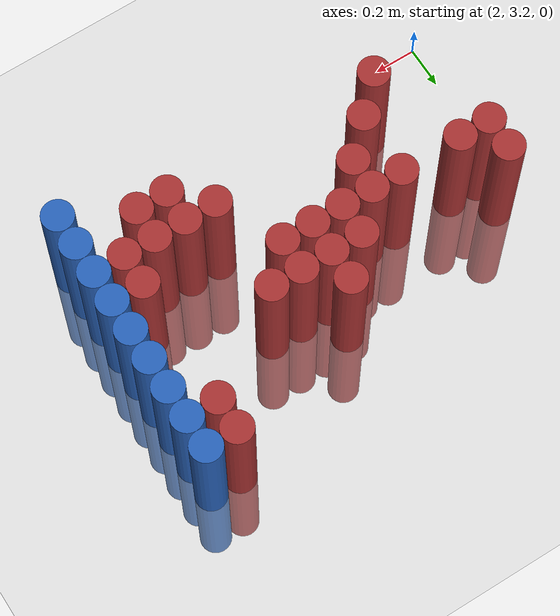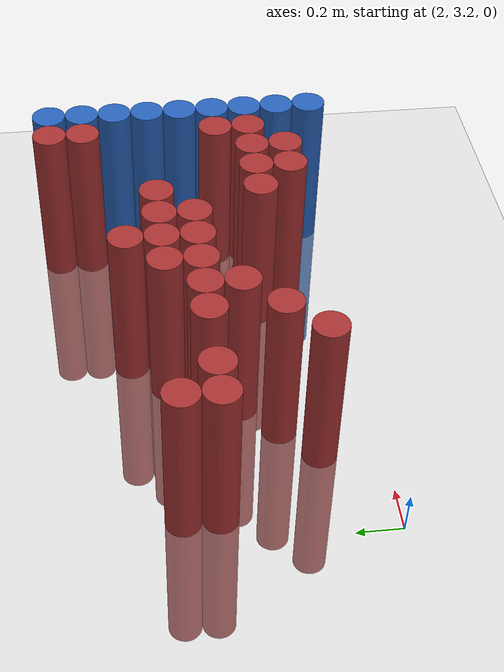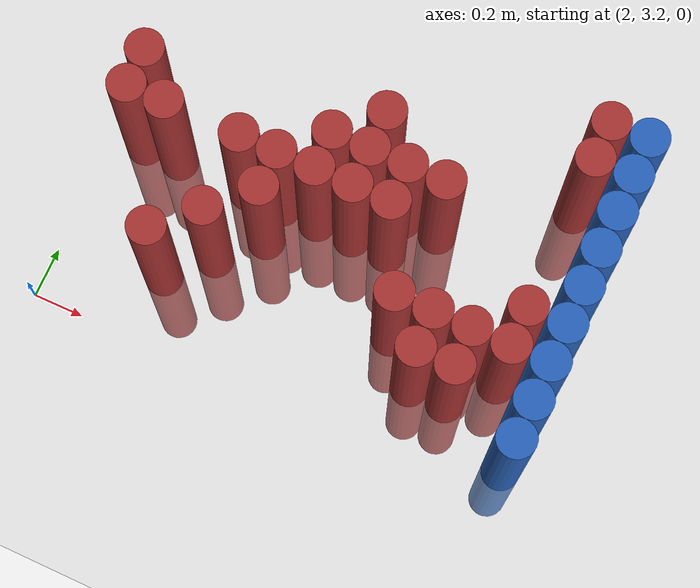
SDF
<sdf version="1.6">
 <world name="default">
  <model name="ground_plane">
   <static>1</static>
   <link name="link">
    <collision name="collision">
     <geometry><plane><normal>0 0 1</normal><size>100 100</size></plane></geometry>
     <surface><friction><ode><mu>100</mu><mu2>50</mu2></ode></friction></surface>
    </collision>
    <visual name="visual">
     <cast_shadows>0</cast_shadows>
     <geometry><plane><normal>0 0 1</normal><size>100 100</size></plane></geometry>
     <material>
      <script><uri>file://media/materials/scripts/gazebo.material</uri><name>Gazebo/Grey</name></script>
     </material>
    </visual>
   </link>
  </model>
  <model name="unit_cylinder_160">
   <static>1</static>
   <pose>3.925000 3.475000 0.000000 0.000000 0.000000 0.000000</pose>
   <link name="link">
    <inertial>
     <mass>1</mass>
     <inertia><ixx>0.145833</ixx><ixy>0</ixy><ixz>0</ixz><iyy>0.145833</iyy><iyz>0</iyz><izz>0.125</izz></inertia>
    </inertial>
    <collision name="collision">
     <geometry><cylinder><radius>0.075000</radius><length>1.5</length></cylinder></geometry>
    </collision>
    <visual name="visual">
     <geometry><cylinder><radius>0.075000</radius><length>1.5</length></cylinder></geometry>
     <material>
      <ambient>0.152000 0.379000 0.720000 1</ambient>
      <diffuse>0.152000 0.379000 0.720000 1</diffuse>
     </material>
     <material>
      <script><name>Gazebo/Grey</name><uri>file://media/materials/scripts/gazebo.material</uri></script>
     </material>
    </visual>
   </link>
  </model>
  <model name="unit_cylinder_162">
   <static>1</static>
   <pose>3.925000 3.625000 0.000000 0.000000 0.000000 0.000000</pose>
   <link name="link">
    <inertial>
     <mass>1</mass>
     <inertia><ixx>0.145833</ixx><ixy>0</ixy><ixz>0</ixz><iyy>0.145833</iyy><iyz>0</iyz><izz>0.125</izz></inertia>
    </inertial>
    <collision name="collision">
     <geometry><cylinder><radius>0.075000</radius><length>1.5</length></cylinder></geometry>
    </collision>
    <visual name="visual">
     <geometry><cylinder><radius>0.075000</radius><length>1.5</length></cylinder></geometry>
     <material>
      <ambient>0.152000 0.379000 0.720000 1</ambient>
      <diffuse>0.152000 0.379000 0.720000 1</diffuse>
     </material>
     <material>
      <script><name>Gazebo/Grey</name><uri>file://media/materials/scripts/gazebo.material</uri></script>
     </material>
    </visual>
   </link>
  </model>
  <model name="unit_cylinder_164">
   <static>1</static>
   <pose>3.925000 3.775000 0.000000 0.000000 0.000000 0.000000</pose>
   <link name="link">
    <inertial>
     <mass>1</mass>
     <inertia><ixx>0.145833</ixx><ixy>0</ixy><ixz>0</ixz><iyy>0.145833</iyy><iyz>0</iyz><izz>0.125</izz></inertia>
    </inertial>
    <collision name="collision">
     <geometry><cylinder><radius>0.075000</radius><length>1.5</length></cylinder></geometry>
    </collision>
    <visual name="visual">
     <geometry><cylinder><radius>0.075000</radius><length>1.5</length></cylinder></geometry>
     <material>
      <ambient>0.152000 0.379000 0.720000 1</ambient>
      <diffuse>0.152000 0.379000 0.720000 1</diffuse>
     </material>
     <material>
      <script><name>Gazebo/Grey</name><uri>file://media/materials/scripts/gazebo.material</uri></script>
     </material>
    </visual>
   </link>
  </model>
  <model name="unit_cylinder_166">
   <static>1</static>
   <pose>3.925000 3.925000 0.000000 0.000000 0.000000 0.000000</pose>
   <link name="link">
    <inertial>
     <mass>1</mass>
     <inertia><ixx>0.145833</ixx><ixy>0</ixy><ixz>0</ixz><iyy>0.145833</iyy><iyz>0</iyz><izz>0.125</izz></inertia>
    </inertial>
    <collision name="collision">
     <geometry><cylinder><radius>0.075000</radius><length>1.5</length></cylinder></geometry>
    </collision>
    <visual name="visual">
     <geometry><cylinder><radius>0.075000</radius><length>1.5</length></cylinder></geometry>
     <material>
      <ambient>0.152000 0.379000 0.720000 1</ambient>
      <diffuse>0.152000 0.379000 0.720000 1</diffuse>
     </material>
     <material>
      <script><name>Gazebo/Grey</name><uri>file://media/materials/scripts/gazebo.material</uri></script>
     </material>
    </visual>
   </link>
  </model>
  <model name="unit_cylinder_168">
   <static>1</static>
   <pose>3.925000 4.075000 0.000000 0.000000 0.000000 0.000000</pose>
   <link name="link">
    <inertial>
     <mass>1</mass>
     <inertia><ixx>0.145833</ixx><ixy>0</ixy><ixz>0</ixz><iyy>0.145833</iyy><iyz>0</iyz><izz>0.125</izz></inertia>
    </inertial>
    <collision name="collision">
     <geometry><cylinder><radius>0.075000</radius><length>1.5</length></cylinder></geometry>
    </collision>
    <visual name="visual">
     <geometry><cylinder><radius>0.075000</radius><length>1.5</length></cylinder></geometry>
     <material>
      <ambient>0.152000 0.379000 0.720000 1</ambient>
      <diffuse>0.152000 0.379000 0.720000 1</diffuse>
     </material>
     <material>
      <script><name>Gazebo/Grey</name><uri>file://media/materials/scripts/gazebo.material</uri></script>
     </material>
    </visual>
   </link>
  </model>
  <model name="unit_cylinder_170">
   <static>1</static>
   <pose>3.925000 4.225000 0.000000 0.000000 0.000000 0.000000</pose>
   <link name="link">
    <inertial>
     <mass>1</mass>
     <inertia><ixx>0.145833</ixx><ixy>0</ixy><ixz>0</ixz><iyy>0.145833</iyy><iyz>0</iyz><izz>0.125</izz></inertia>
    </inertial>
    <collision name="collision">
     <geometry><cylinder><radius>0.075000</radius><length>1.5</length></cylinder></geometry>
    </collision>
    <visual name="visual">
     <geometry><cylinder><radius>0.075000</radius><length>1.5</length></cylinder></geometry>
     <material>
      <ambient>0.152000 0.379000 0.720000 1</ambient>
      <diffuse>0.152000 0.379000 0.720000 1</diffuse>
     </material>
     <material>
      <script><name>Gazebo/Grey</name><uri>file://media/materials/scripts/gazebo.material</uri></script>
     </material>
    </visual>
   </link>
  </model>
  <model name="unit_cylinder_172">
   <static>1</static>
   <pose>3.925000 4.375000 0.000000 0.000000 0.000000 0.000000</pose>
   <link name="link">
    <inertial>
     <mass>1</mass>
     <inertia><ixx>0.145833</ixx><ixy>0</ixy><ixz>0</ixz><iyy>0.145833</iyy><iyz>0</iyz><izz>0.125</izz></inertia>
    </inertial>
    <collision name="collision">
     <geometry><cylinder><radius>0.075000</radius><length>1.5</length></cylinder></geometry>
    </collision>
    <visual name="visual">
     <geometry><cylinder><radius>0.075000</radius><length>1.5</length></cylinder></geometry>
     <material>
      <ambient>0.152000 0.379000 0.720000 1</ambient>
      <diffuse>0.152000 0.379000 0.720000 1</diffuse>
     </material>
     <material>
      <script><name>Gazebo/Grey</name><uri>file://media/materials/scripts/gazebo.material</uri></script>
     </material>
    </visual>
   </link>
  </model>
  <model name="unit_cylinder_174">
   <static>1</static>
   <pose>3.925000 4.525000 0.000000 0.000000 0.000000 0.000000</pose>
   <link name="link">
    <inertial>
     <mass>1</mass>
     <inertia><ixx>0.145833</ixx><ixy>0</ixy><ixz>0</ixz><iyy>0.145833</iyy><iyz>0</iyz><izz>0.125</izz></inertia>
    </inertial>
    <collision name="collision">
     <geometry><cylinder><radius>0.075000</radius><length>1.5</length></cylinder></geometry>
    </collision>
    <visual name="visual">
     <geometry><cylinder><radius>0.075000</radius><length>1.5</length></cylinder></geometry>
     <material>
      <ambient>0.152000 0.379000 0.720000 1</ambient>
      <diffuse>0.152000 0.379000 0.720000 1</diffuse>
     </material>
     <material>
      <script><name>Gazebo/Grey</name><uri>file://media/materials/scripts/gazebo.material</uri></script>
     </material>
    </visual>
   </link>
  </model>
  <model name="unit_cylinder_452">
   <static>1</static>
   <pose>2.125000 3.925000 0.000000 0.000000 0.000000 0.000000</pose>
   <link name="link">
    <inertial>
     <mass>1</mass>
     <inertia><ixx>0.145833</ixx><ixy>0</ixy><ixz>0</ixz><iyy>0.145833</iyy><iyz>0</iyz><izz>0.125</izz></inertia>
    </inertial>
    <collision name="collision">
     <geometry><cylinder><radius>0.075000</radius><length>1.5</length></cylinder></geometry>
    </collision>
    <visual name="visual">
     <geometry><cylinder><radius>0.075000</radius><length>1.5</length></cylinder></geometry>
     <material>
      <ambient>0.648000 0.192000 0.192000 1</ambient>
      <diffuse>0.648000 0.192000 0.192000 1</diffuse>
     </material>
     <material>
      <script><name>Gazebo/Grey</name><uri>file://media/materials/scripts/gazebo.material</uri></script>
     </material>
    </visual>
   </link>
  </model>
  <model name="unit_cylinder_453">
   <static>1</static>
   <pose>2.125000 4.075000 0.000000 0.000000 0.000000 0.000000</pose>
   <link name="link">
    <inertial>
     <mass>1</mass>
     <inertia><ixx>0.145833</ixx><ixy>0</ixy><ixz>0</ixz><iyy>0.145833</iyy><iyz>0</iyz><izz>0.125</izz></inertia>
    </inertial>
    <collision name="collision">
     <geometry><cylinder><radius>0.075000</radius><length>1.5</length></cylinder></geometry>
    </collision>
    <visual name="visual">
     <geometry><cylinder><radius>0.075000</radius><length>1.5</length></cylinder></geometry>
     <material>
      <ambient>0.648000 0.192000 0.192000 1</ambient>
      <diffuse>0.648000 0.192000 0.192000 1</diffuse>
     </material>
     <material>
      <script><name>Gazebo/Grey</name><uri>file://media/materials/scripts/gazebo.material</uri></script>
     </material>
    </visual>
   </link>
  </model>
  <model name="unit_cylinder_462">
   <static>1</static>
   <pose>2.275000 3.925000 0.000000 0.000000 0.000000 0.000000</pose>
   <link name="link">
    <inertial>
     <mass>1</mass>
     <inertia><ixx>0.145833</ixx><ixy>0</ixy><ixz>0</ixz><iyy>0.145833</iyy><iyz>0</iyz><izz>0.125</izz></inertia>
    </inertial>
    <collision name="collision">
     <geometry><cylinder><radius>0.075000</radius><length>1.5</length></cylinder></geometry>
    </collision>
    <visual name="visual">
     <geometry><cylinder><radius>0.075000</radius><length>1.5</length></cylinder></geometry>
     <material>
      <ambient>0.648000 0.192000 0.192000 1</ambient>
      <diffuse>0.648000 0.192000 0.192000 1</diffuse>
     </material>
     <material>
      <script><name>Gazebo/Grey</name><uri>file://media/materials/scripts/gazebo.material</uri></script>
     </material>
    </visual>
   </link>
  </model>
  <model name="unit_cylinder_472">
   <static>1</static>
   <pose>2.425000 3.475000 0.000000 0.000000 0.000000 0.000000</pose>
   <link name="link">
    <inertial>
     <mass>1</mass>
     <inertia><ixx>0.145833</ixx><ixy>0</ixy><ixz>0</ixz><iyy>0.145833</iyy><iyz>0</iyz><izz>0.125</izz></inertia>
    </inertial>
    <collision name="collision">
     <geometry><cylinder><radius>0.075000</radius><length>1.5</length></cylinder></geometry>
    </collision>
    <visual name="visual">
     <geometry><cylinder><radius>0.075000</radius><length>1.5</length></cylinder></geometry>
     <material>
      <ambient>0.648000 0.192000 0.192000 1</ambient>
      <diffuse>0.648000 0.192000 0.192000 1</diffuse>
     </material>
     <material>
      <script><name>Gazebo/Grey</name><uri>file://media/materials/scripts/gazebo.material</uri></script>
     </material>
    </visual>
   </link>
  </model>
  <model name="unit_cylinder_481">
   <static>1</static>
   <pose>2.575000 3.625000 0.000000 0.000000 0.000000 0.000000</pose>
   <link name="link">
    <inertial>
     <mass>1</mass>
     <inertia><ixx>0.145833</ixx><ixy>0</ixy><ixz>0</ixz><iyy>0.145833</iyy><iyz>0</iyz><izz>0.125</izz></inertia>
    </inertial>
    <collision name="collision">
     <geometry><cylinder><radius>0.075000</radius><length>1.5</length></cylinder></geometry>
    </collision>
    <visual name="visual">
     <geometry><cylinder><radius>0.075000</radius><length>1.5</length></cylinder></geometry>
     <material>
      <ambient>0.648000 0.192000 0.192000 1</ambient>
      <diffuse>0.648000 0.192000 0.192000 1</diffuse>
     </material>
     <material>
      <script><name>Gazebo/Grey</name><uri>file://media/materials/scripts/gazebo.material</uri></script>
     </material>
    </visual>
   </link>
  </model>
  <model name="unit_cylinder_482">
   <static>1</static>
   <pose>2.575000 3.925000 0.000000 0.000000 0.000000 0.000000</pose>
   <link name="link">
    <inertial>
     <mass>1</mass>
     <inertia><ixx>0.145833</ixx><ixy>0</ixy><ixz>0</ixz><iyy>0.145833</iyy><iyz>0</iyz><izz>0.125</izz></inertia>
    </inertial>
    <collision name="collision">
     <geometry><cylinder><radius>0.075000</radius><length>1.5</length></cylinder></geometry>
    </collision>
    <visual name="visual">
     <geometry><cylinder><radius>0.075000</radius><length>1.5</length></cylinder></geometry>
     <material>
      <ambient>0.648000 0.192000 0.192000 1</ambient>
      <diffuse>0.648000 0.192000 0.192000 1</diffuse>
     </material>
     <material>
      <script><name>Gazebo/Grey</name><uri>file://media/materials/scripts/gazebo.material</uri></script>
     </material>
    </visual>
   </link>
  </model>
  <model name="unit_cylinder_495">
   <static>1</static>
   <pose>2.725000 3.775000 0.000000 0.000000 0.000000 0.000000</pose>
   <link name="link">
    <inertial>
     <mass>1</mass>
     <inertia><ixx>0.145833</ixx><ixy>0</ixy><ixz>0</ixz><iyy>0.145833</iyy><iyz>0</iyz><izz>0.125</izz></inertia>
    </inertial>
    <collision name="collision">
     <geometry><cylinder><radius>0.075000</radius><length>1.5</length></cylinder></geometry>
    </collision>
    <visual name="visual">
     <geometry><cylinder><radius>0.075000</radius><length>1.5</length></cylinder></geometry>
     <material>
      <ambient>0.648000 0.192000 0.192000 1</ambient>
      <diffuse>0.648000 0.192000 0.192000 1</diffuse>
     </material>
     <material>
      <script><name>Gazebo/Grey</name><uri>file://media/materials/scripts/gazebo.material</uri></script>
     </material>
    </visual>
   </link>
  </model>
  <model name="unit_cylinder_496">
   <static>1</static>
   <pose>2.725000 3.925000 0.000000 0.000000 0.000000 0.000000</pose>
   <link name="link">
    <inertial>
     <mass>1</mass>
     <inertia><ixx>0.145833</ixx><ixy>0</ixy><ixz>0</ixz><iyy>0.145833</iyy><iyz>0</iyz><izz>0.125</izz></inertia>
    </inertial>
    <collision name="collision">
     <geometry><cylinder><radius>0.075000</radius><length>1.5</length></cylinder></geometry>
    </collision>
    <visual name="visual">
     <geometry><cylinder><radius>0.075000</radius><length>1.5</length></cylinder></geometry>
     <material>
      <ambient>0.648000 0.192000 0.192000 1</ambient>
      <diffuse>0.648000 0.192000 0.192000 1</diffuse>
     </material>
     <material>
      <script><name>Gazebo/Grey</name><uri>file://media/materials/scripts/gazebo.material</uri></script>
     </material>
    </visual>
   </link>
  </model>
  <model name="unit_cylinder_511">
   <static>1</static>
   <pose>2.875000 3.925000 0.000000 0.000000 0.000000 0.000000</pose>
   <link name="link">
    <inertial>
     <mass>1</mass>
     <inertia><ixx>0.145833</ixx><ixy>0</ixy><ixz>0</ixz><iyy>0.145833</iyy><iyz>0</iyz><izz>0.125</izz></inertia>
    </inertial>
    <collision name="collision">
     <geometry><cylinder><radius>0.075000</radius><length>1.5</length></cylinder></geometry>
    </collision>
    <visual name="visual">
     <geometry><cylinder><radius>0.075000</radius><length>1.5</length></cylinder></geometry>
     <material>
      <ambient>0.648000 0.192000 0.192000 1</ambient>
      <diffuse>0.648000 0.192000 0.192000 1</diffuse>
     </material>
     <material>
      <script><name>Gazebo/Grey</name><uri>file://media/materials/scripts/gazebo.material</uri></script>
     </material>
    </visual>
   </link>
  </model>
  <model name="unit_cylinder_512">
   <static>1</static>
   <pose>2.875000 4.075000 0.000000 0.000000 0.000000 0.000000</pose>
   <link name="link">
    <inertial>
     <mass>1</mass>
     <inertia><ixx>0.145833</ixx><ixy>0</ixy><ixz>0</ixz><iyy>0.145833</iyy><iyz>0</iyz><izz>0.125</izz></inertia>
    </inertial>
    <collision name="collision">
     <geometry><cylinder><radius>0.075000</radius><length>1.5</length></cylinder></geometry>
    </collision>
    <visual name="visual">
     <geometry><cylinder><radius>0.075000</radius><length>1.5</length></cylinder></geometry>
     <material>
      <ambient>0.648000 0.192000 0.192000 1</ambient>
      <diffuse>0.648000 0.192000 0.192000 1</diffuse>
     </material>
     <material>
      <script><name>Gazebo/Grey</name><uri>file://media/materials/scripts/gazebo.material</uri></script>
     </material>
    </visual>
   </link>
  </model>
  <model name="unit_cylinder_522">
   <static>1</static>
   <pose>3.025000 3.925000 0.000000 0.000000 0.000000 0.000000</pose>
   <link name="link">
    <inertial>
     <mass>1</mass>
     <inertia><ixx>0.145833</ixx><ixy>0</ixy><ixz>0</ixz><iyy>0.145833</iyy><iyz>0</iyz><izz>0.125</izz></inertia>
    </inertial>
    <collision name="collision">
     <geometry><cylinder><radius>0.075000</radius><length>1.5</length></cylinder></geometry>
    </collision>
    <visual name="visual">
     <geometry><cylinder><radius>0.075000</radius><length>1.5</length></cylinder></geometry>
     <material>
      <ambient>0.648000 0.192000 0.192000 1</ambient>
      <diffuse>0.648000 0.192000 0.192000 1</diffuse>
     </material>
     <material>
      <script><name>Gazebo/Grey</name><uri>file://media/materials/scripts/gazebo.material</uri></script>
     </material>
    </visual>
   </link>
  </model>
  <model name="unit_cylinder_523">
   <static>1</static>
   <pose>3.025000 4.075000 0.000000 0.000000 0.000000 0.000000</pose>
   <link name="link">
    <inertial>
     <mass>1</mass>
     <inertia><ixx>0.145833</ixx><ixy>0</ixy><ixz>0</ixz><iyy>0.145833</iyy><iyz>0</iyz><izz>0.125</izz></inertia>
    </inertial>
    <collision name="collision">
     <geometry><cylinder><radius>0.075000</radius><length>1.5</length></cylinder></geometry>
    </collision>
    <visual name="visual">
     <geometry><cylinder><radius>0.075000</radius><length>1.5</length></cylinder></geometry>
     <material>
      <ambient>0.648000 0.192000 0.192000 1</ambient>
      <diffuse>0.648000 0.192000 0.192000 1</diffuse>
     </material>
     <material>
      <script><name>Gazebo/Grey</name><uri>file://media/materials/scripts/gazebo.material</uri></script>
     </material>
    </visual>
   </link>
  </model>
  <model name="unit_cylinder_524">
   <static>1</static>
   <pose>3.025000 4.225000 0.000000 0.000000 0.000000 0.000000</pose>
   <link name="link">
    <inertial>
     <mass>1</mass>
     <inertia><ixx>0.145833</ixx><ixy>0</ixy><ixz>0</ixz><iyy>0.145833</iyy><iyz>0</iyz><izz>0.125</izz></inertia>
    </inertial>
    <collision name="collision">
     <geometry><cylinder><radius>0.075000</radius><length>1.5</length></cylinder></geometry>
    </collision>
    <visual name="visual">
     <geometry><cylinder><radius>0.075000</radius><length>1.5</length></cylinder></geometry>
     <material>
      <ambient>0.648000 0.192000 0.192000 1</ambient>
      <diffuse>0.648000 0.192000 0.192000 1</diffuse>
     </material>
     <material>
      <script><name>Gazebo/Grey</name><uri>file://media/materials/scripts/gazebo.material</uri></script>
     </material>
    </visual>
   </link>
  </model>
  <model name="unit_cylinder_530">
   <static>1</static>
   <pose>3.175000 3.925000 0.000000 0.000000 0.000000 0.000000</pose>
   <link name="link">
    <inertial>
     <mass>1</mass>
     <inertia><ixx>0.145833</ixx><ixy>0</ixy><ixz>0</ixz><iyy>0.145833</iyy><iyz>0</iyz><izz>0.125</izz></inertia>
    </inertial>
    <collision name="collision">
     <geometry><cylinder><radius>0.075000</radius><length>1.5</length></cylinder></geometry>
    </collision>
    <visual name="visual">
     <geometry><cylinder><radius>0.075000</radius><length>1.5</length></cylinder></geometry>
     <material>
      <ambient>0.648000 0.192000 0.192000 1</ambient>
      <diffuse>0.648000 0.192000 0.192000 1</diffuse>
     </material>
     <material>
      <script><name>Gazebo/Grey</name><uri>file://media/materials/scripts/gazebo.material</uri></script>
     </material>
    </visual>
   </link>
  </model>
  <model name="unit_cylinder_531">
   <static>1</static>
   <pose>3.175000 4.075000 0.000000 0.000000 0.000000 0.000000</pose>
   <link name="link">
    <inertial>
     <mass>1</mass>
     <inertia><ixx>0.145833</ixx><ixy>0</ixy><ixz>0</ixz><iyy>0.145833</iyy><iyz>0</iyz><izz>0.125</izz></inertia>
    </inertial>
    <collision name="collision">
     <geometry><cylinder><radius>0.075000</radius><length>1.5</length></cylinder></geometry>
    </collision>
    <visual name="visual">
     <geometry><cylinder><radius>0.075000</radius><length>1.5</length></cylinder></geometry>
     <material>
      <ambient>0.648000 0.192000 0.192000 1</ambient>
      <diffuse>0.648000 0.192000 0.192000 1</diffuse>
     </material>
     <material>
      <script><name>Gazebo/Grey</name><uri>file://media/materials/scripts/gazebo.material</uri></script>
     </material>
    </visual>
   </link>
  </model>
  <model name="unit_cylinder_545">
   <static>1</static>
   <pose>3.325000 3.625000 0.000000 0.000000 0.000000 0.000000</pose>
   <link name="link">
    <inertial>
     <mass>1</mass>
     <inertia><ixx>0.145833</ixx><ixy>0</ixy><ixz>0</ixz><iyy>0.145833</iyy><iyz>0</iyz><izz>0.125</izz></inertia>
    </inertial>
    <collision name="collision">
     <geometry><cylinder><radius>0.075000</radius><length>1.5</length></cylinder></geometry>
    </collision>
    <visual name="visual">
     <geometry><cylinder><radius>0.075000</radius><length>1.5</length></cylinder></geometry>
     <material>
      <ambient>0.648000 0.192000 0.192000 1</ambient>
      <diffuse>0.648000 0.192000 0.192000 1</diffuse>
     </material>
     <material>
      <script><name>Gazebo/Grey</name><uri>file://media/materials/scripts/gazebo.material</uri></script>
     </material>
    </visual>
   </link>
  </model>
  <model name="unit_cylinder_546">
   <static>1</static>
   <pose>3.325000 4.075000 0.000000 0.000000 0.000000 0.000000</pose>
   <link name="link">
    <inertial>
     <mass>1</mass>
     <inertia><ixx>0.145833</ixx><ixy>0</ixy><ixz>0</ixz><iyy>0.145833</iyy><iyz>0</iyz><izz>0.125</izz></inertia>
    </inertial>
    <collision name="collision">
     <geometry><cylinder><radius>0.075000</radius><length>1.5</length></cylinder></geometry>
    </collision>
    <visual name="visual">
     <geometry><cylinder><radius>0.075000</radius><length>1.5</length></cylinder></geometry>
     <material>
      <ambient>0.648000 0.192000 0.192000 1</ambient>
      <diffuse>0.648000 0.192000 0.192000 1</diffuse>
     </material>
     <material>
      <script><name>Gazebo/Grey</name><uri>file://media/materials/scripts/gazebo.material</uri></script>
     </material>
    </visual>
   </link>
  </model>
  <model name="unit_cylinder_556">
   <static>1</static>
   <pose>3.475000 3.475000 0.000000 0.000000 0.000000 0.000000</pose>
   <link name="link">
    <inertial>
     <mass>1</mass>
     <inertia><ixx>0.145833</ixx><ixy>0</ixy><ixz>0</ixz><iyy>0.145833</iyy><iyz>0</iyz><izz>0.125</izz></inertia>
    </inertial>
    <collision name="collision">
     <geometry><cylinder><radius>0.075000</radius><length>1.5</length></cylinder></geometry>
    </collision>
    <visual name="visual">
     <geometry><cylinder><radius>0.075000</radius><length>1.5</length></cylinder></geometry>
     <material>
      <ambient>0.648000 0.192000 0.192000 1</ambient>
      <diffuse>0.648000 0.192000 0.192000 1</diffuse>
     </material>
     <material>
      <script><name>Gazebo/Grey</name><uri>file://media/materials/scripts/gazebo.material</uri></script>
     </material>
    </visual>
   </link>
  </model>
  <model name="unit_cylinder_557">
   <static>1</static>
   <pose>3.475000 3.625000 0.000000 0.000000 0.000000 0.000000</pose>
   <link name="link">
    <inertial>
     <mass>1</mass>
     <inertia><ixx>0.145833</ixx><ixy>0</ixy><ixz>0</ixz><iyy>0.145833</iyy><iyz>0</iyz><izz>0.125</izz></inertia>
    </inertial>
    <collision name="collision">
     <geometry><cylinder><radius>0.075000</radius><length>1.5</length></cylinder></geometry>
    </collision>
    <visual name="visual">
     <geometry><cylinder><radius>0.075000</radius><length>1.5</length></cylinder></geometry>
     <material>
      <ambient>0.648000 0.192000 0.192000 1</ambient>
      <diffuse>0.648000 0.192000 0.192000 1</diffuse>
     </material>
     <material>
      <script><name>Gazebo/Grey</name><uri>file://media/materials/scripts/gazebo.material</uri></script>
     </material>
    </visual>
   </link>
  </model>
  <model name="unit_cylinder_571">
   <static>1</static>
   <pose>3.625000 3.475000 0.000000 0.000000 0.000000 0.000000</pose>
   <link name="link">
    <inertial>
     <mass>1</mass>
     <inertia><ixx>0.145833</ixx><ixy>0</ixy><ixz>0</ixz><iyy>0.145833</iyy><iyz>0</iyz><izz>0.125</izz></inertia>
    </inertial>
    <collision name="collision">
     <geometry><cylinder><radius>0.075000</radius><length>1.5</length></cylinder></geometry>
    </collision>
    <visual name="visual">
     <geometry><cylinder><radius>0.075000</radius><length>1.5</length></cylinder></geometry>
     <material>
      <ambient>0.648000 0.192000 0.192000 1</ambient>
      <diffuse>0.648000 0.192000 0.192000 1</diffuse>
     </material>
     <material>
      <script><name>Gazebo/Grey</name><uri>file://media/materials/scripts/gazebo.material</uri></script>
     </material>
    </visual>
   </link>
  </model>
  <model name="unit_cylinder_572">
   <static>1</static>
   <pose>3.625000 3.625000 0.000000 0.000000 0.000000 0.000000</pose>
   <link name="link">
    <inertial>
     <mass>1</mass>
     <inertia><ixx>0.145833</ixx><ixy>0</ixy><ixz>0</ixz><iyy>0.145833</iyy><iyz>0</iyz><izz>0.125</izz></inertia>
    </inertial>
    <collision name="collision">
     <geometry><cylinder><radius>0.075000</radius><length>1.5</length></cylinder></geometry>
    </collision>
    <visual name="visual">
     <geometry><cylinder><radius>0.075000</radius><length>1.5</length></cylinder></geometry>
     <material>
      <ambient>0.648000 0.192000 0.192000 1</ambient>
      <diffuse>0.648000 0.192000 0.192000 1</diffuse>
     </material>
     <material>
      <script><name>Gazebo/Grey</name><uri>file://media/materials/scripts/gazebo.material</uri></script>
     </material>
    </visual>
   </link>
  </model>
  <model name="unit_cylinder_594">
   <static>1</static>
   <pose>3.775000 3.625000 0.000000 0.000000 0.000000 0.000000</pose>
   <link name="link">
    <inertial>
     <mass>1</mass>
     <inertia><ixx>0.145833</ixx><ixy>0</ixy><ixz>0</ixz><iyy>0.145833</iyy><iyz>0</iyz><izz>0.125</izz></inertia>
    </inertial>
    <collision name="collision">
     <geometry><cylinder><radius>0.075000</radius><length>1.5</length></cylinder></geometry>
    </collision>
    <visual name="visual">
     <geometry><cylinder><radius>0.075000</radius><length>1.5</length></cylinder></geometry>
     <material>
      <ambient>0.648000 0.192000 0.192000 1</ambient>
      <diffuse>0.648000 0.192000 0.192000 1</diffuse>
     </material>
     <material>
      <script><name>Gazebo/Grey</name><uri>file://media/materials/scripts/gazebo.material</uri></script>
     </material>
    </visual>
   </link>
  </model>
  <model name="unit_cylinder_595">
   <static>1</static>
   <pose>3.775000 3.775000 0.000000 0.000000 0.000000 0.000000</pose>
   <link name="link">
    <inertial>
     <mass>1</mass>
     <inertia><ixx>0.145833</ixx><ixy>0</ixy><ixz>0</ixz><iyy>0.145833</iyy><iyz>0</iyz><izz>0.125</izz></inertia>
    </inertial>
    <collision name="collision">
     <geometry><cylinder><radius>0.075000</radius><length>1.5</length></cylinder></geometry>
    </collision>
    <visual name="visual">
     <geometry><cylinder><radius>0.075000</radius><length>1.5</length></cylinder></geometry>
     <material>
      <ambient>0.648000 0.192000 0.192000 1</ambient>
      <diffuse>0.648000 0.192000 0.192000 1</diffuse>
     </material>
     <material>
      <script><name>Gazebo/Grey</name><uri>file://media/materials/scripts/gazebo.material</uri></script>
     </material>
    </visual>
   </link>
  </model>
  <model name="unit_cylinder_596">
   <static>1</static>
   <pose>3.775000 4.375000 0.000000 0.000000 0.000000 0.000000</pose>
   <link name="link">
    <inertial>
     <mass>1</mass>
     <inertia><ixx>0.145833</ixx><ixy>0</ixy><ixz>0</ixz><iyy>0.145833</iyy><iyz>0</iyz><izz>0.125</izz></inertia>
    </inertial>
    <collision name="collision">
     <geometry><cylinder><radius>0.075000</radius><length>1.5</length></cylinder></geometry>
    </collision>
    <visual name="visual">
     <geometry><cylinder><radius>0.075000</radius><length>1.5</length></cylinder></geometry>
     <material>
      <ambient>0.648000 0.192000 0.192000 1</ambient>
      <diffuse>0.648000 0.192000 0.192000 1</diffuse>
     </material>
     <material>
      <script><name>Gazebo/Grey</name><uri>file://media/materials/scripts/gazebo.material</uri></script>
     </material>
    </visual>
   </link>
  </model>
  <model name="unit_cylinder_597">
   <static>1</static>
   <pose>3.775000 4.525000 0.000000 0.000000 0.000000 0.000000</pose>
   <link name="link">
    <inertial>
     <mass>1</mass>
     <inertia><ixx>0.145833</ixx><ixy>0</ixy><ixz>0</ixz><iyy>0.145833</iyy><iyz>0</iyz><izz>0.125</izz></inertia>
    </inertial>
    <collision name="collision">
     <geometry><cylinder><radius>0.075000</radius><length>1.5</length></cylinder></geometry>
    </collision>
    <visual name="visual">
     <geometry><cylinder><radius>0.075000</radius><length>1.5</length></cylinder></geometry>
     <material>
      <ambient>0.648000 0.192000 0.192000 1</ambient>
      <diffuse>0.648000 0.192000 0.192000 1</diffuse>
     </material>
     <material>
      <script><name>Gazebo/Grey</name><uri>file://media/materials/scripts/gazebo.material</uri></script>
     </material>
    </visual>
   </link>
  </model>
  <model name="unit_cylinder_638">
   <static>1</static>
   <pose>3.925000 3.325000 0.000000 0.000000 0.000000 0.000000</pose>
   <link name="link">
    <inertial>
     <mass>1</mass>
     <inertia><ixx>0.145833</ixx><ixy>0</ixy><ixz>0</ixz><iyy>0.145833</iyy><iyz>0</iyz><izz>0.125</izz></inertia>
    </inertial>
    <collision name="collision">
     <geometry><cylinder><radius>0.075000</radius><length>1.5</length></cylinder></geometry>
    </collision>
    <visual name="visual">
     <geometry><cylinder><radius>0.075000</radius><length>1.5</length></cylinder></geometry>
     <material>
      <ambient>0.152000 0.379000 0.720000 1</ambient>
      <diffuse>0.152000 0.379000 0.720000 1</diffuse>
     </material>
     <material>
      <script><name>Gazebo/Grey</name><uri>file://media/materials/scripts/gazebo.material</uri></script>
     </material>
    </visual>
   </link>
  </model>
  <model name="unit_cylinder_639">
   <static>1</static>
   <pose>3.925000 3.475000 0.000000 0.000000 0.000000 0.000000</pose>
   <link name="link">
    <inertial>
     <mass>1</mass>
     <inertia><ixx>0.145833</ixx><ixy>0</ixy><ixz>0</ixz><iyy>0.145833</iyy><iyz>0</iyz><izz>0.125</izz></inertia>
    </inertial>
    <collision name="collision">
     <geometry><cylinder><radius>0.075000</radius><length>1.5</length></cylinder></geometry>
    </collision>
    <visual name="visual">
     <geometry><cylinder><radius>0.075000</radius><length>1.5</length></cylinder></geometry>
     <material>
      <ambient>0.152000 0.379000 0.720000 1</ambient>
      <diffuse>0.152000 0.379000 0.720000 1</diffuse>
     </material>
     <material>
      <script><name>Gazebo/Grey</name><uri>file://media/materials/scripts/gazebo.material</uri></script>
     </material>
    </visual>
   </link>
  </model>
  <model name="unit_cylinder_640">
   <static>1</static>
   <pose>3.925000 3.625000 0.000000 0.000000 0.000000 0.000000</pose>
   <link name="link">
    <inertial>
     <mass>1</mass>
     <inertia><ixx>0.145833</ixx><ixy>0</ixy><ixz>0</ixz><iyy>0.145833</iyy><iyz>0</iyz><izz>0.125</izz></inertia>
    </inertial>
    <collision name="collision">
     <geometry><cylinder><radius>0.075000</radius><length>1.5</length></cylinder></geometry>
    </collision>
    <visual name="visual">
     <geometry><cylinder><radius>0.075000</radius><length>1.5</length></cylinder></geometry>
     <material>
      <ambient>0.152000 0.379000 0.720000 1</ambient>
      <diffuse>0.152000 0.379000 0.720000 1</diffuse>
     </material>
     <material>
      <script><name>Gazebo/Grey</name><uri>file://media/materials/scripts/gazebo.material</uri></script>
     </material>
    </visual>
   </link>
  </model>
  <model name="unit_cylinder_641">
   <static>1</static>
   <pose>3.925000 3.775000 0.000000 0.000000 0.000000 0.000000</pose>
   <link name="link">
    <inertial>
     <mass>1</mass>
     <inertia><ixx>0.145833</ixx><ixy>0</ixy><ixz>0</ixz><iyy>0.145833</iyy><iyz>0</iyz><izz>0.125</izz></inertia>
    </inertial>
    <collision name="collision">
     <geometry><cylinder><radius>0.075000</radius><length>1.5</length></cylinder></geometry>
    </collision>
    <visual name="visual">
     <geometry><cylinder><radius>0.075000</radius><length>1.5</length></cylinder></geometry>
     <material>
      <ambient>0.152000 0.379000 0.720000 1</ambient>
      <diffuse>0.152000 0.379000 0.720000 1</diffuse>
     </material>
     <material>
      <script><name>Gazebo/Grey</name><uri>file://media/materials/scripts/gazebo.material</uri></script>
     </material>
    </visual>
   </link>
  </model>
  <model name="unit_cylinder_642">
   <static>1</static>
   <pose>3.925000 3.925000 0.000000 0.000000 0.000000 0.000000</pose>
   <link name="link">
    <inertial>
     <mass>1</mass>
     <inertia><ixx>0.145833</ixx><ixy>0</ixy><ixz>0</ixz><iyy>0.145833</iyy><iyz>0</iyz><izz>0.125</izz></inertia>
    </inertial>
    <collision name="collision">
     <geometry><cylinder><radius>0.075000</radius><length>1.5</length></cylinder></geometry>
    </collision>
    <visual name="visual">
     <geometry><cylinder><radius>0.075000</radius><length>1.5</length></cylinder></geometry>
     <material>
      <ambient>0.152000 0.379000 0.720000 1</ambient>
      <diffuse>0.152000 0.379000 0.720000 1</diffuse>
     </material>
     <material>
      <script><name>Gazebo/Grey</name><uri>file://media/materials/scripts/gazebo.material</uri></script>
     </material>
    </visual>
   </link>
  </model>
  <model name="unit_cylinder_643">
   <static>1</static>
   <pose>3.925000 4.075000 0.000000 0.000000 0.000000 0.000000</pose>
   <link name="link">
    <inertial>
     <mass>1</mass>
     <inertia><ixx>0.145833</ixx><ixy>0</ixy><ixz>0</ixz><iyy>0.145833</iyy><iyz>0</iyz><izz>0.125</izz></inertia>
    </inertial>
    <collision name="collision">
     <geometry><cylinder><radius>0.075000</radius><length>1.5</length></cylinder></geometry>
    </collision>
    <visual name="visual">
     <geometry><cylinder><radius>0.075000</radius><length>1.5</length></cylinder></geometry>
     <material>
      <ambient>0.152000 0.379000 0.720000 1</ambient>
      <diffuse>0.152000 0.379000 0.720000 1</diffuse>
     </material>
     <material>
      <script><name>Gazebo/Grey</name><uri>file://media/materials/scripts/gazebo.material</uri></script>
     </material>
    </visual>
   </link>
  </model>
  <model name="unit_cylinder_644">
   <static>1</static>
   <pose>3.925000 4.225000 0.000000 0.000000 0.000000 0.000000</pose>
   <link name="link">
    <inertial>
     <mass>1</mass>
     <inertia><ixx>0.145833</ixx><ixy>0</ixy><ixz>0</ixz><iyy>0.145833</iyy><iyz>0</iyz><izz>0.125</izz></inertia>
    </inertial>
    <collision name="collision">
     <geometry><cylinder><radius>0.075000</radius><length>1.5</length></cylinder></geometry>
    </collision>
    <visual name="visual">
     <geometry><cylinder><radius>0.075000</radius><length>1.5</length></cylinder></geometry>
     <material>
      <ambient>0.152000 0.379000 0.720000 1</ambient>
      <diffuse>0.152000 0.379000 0.720000 1</diffuse>
     </material>
     <material>
      <script><name>Gazebo/Grey</name><uri>file://media/materials/scripts/gazebo.material</uri></script>
     </material>
    </visual>
   </link>
  </model>
  <model name="unit_cylinder_645">
   <static>1</static>
   <pose>3.925000 4.375000 0.000000 0.000000 0.000000 0.000000</pose>
   <link name="link">
    <inertial>
     <mass>1</mass>
     <inertia><ixx>0.145833</ixx><ixy>0</ixy><ixz>0</ixz><iyy>0.145833</iyy><iyz>0</iyz><izz>0.125</izz></inertia>
    </inertial>
    <collision name="collision">
     <geometry><cylinder><radius>0.075000</radius><length>1.5</length></cylinder></geometry>
    </collision>
    <visual name="visual">
     <geometry><cylinder><radius>0.075000</radius><length>1.5</length></cylinder></geometry>
     <material>
      <ambient>0.152000 0.379000 0.720000 1</ambient>
      <diffuse>0.152000 0.379000 0.720000 1</diffuse>
     </material>
     <material>
      <script><name>Gazebo/Grey</name><uri>file://media/materials/scripts/gazebo.material</uri></script>
     </material>
    </visual>
   </link>
  </model>
 </world>
</sdf>
